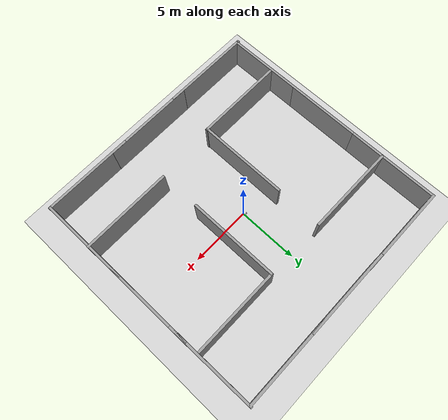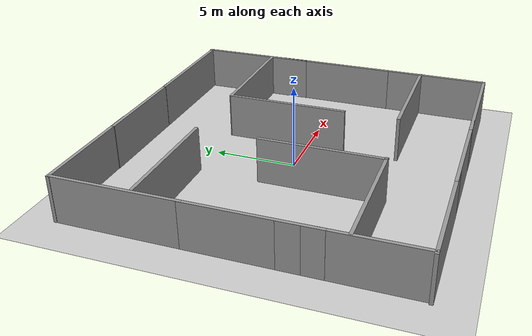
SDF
<sdf version="1.6">
 <world name="default">
  <light name="sun" type="directional">
   <pose>0 0 10 0 -0 0</pose>
   <diffuse>0.8 0.8 0.8 1</diffuse>
   <specular>0.2 0.2 0.2 1</specular>
   <attenuation>
    <range>1000</range>
    <constant>0.9</constant>
    <linear>0.01</linear>
    <quadratic>0.001</quadratic>
   </attenuation>
   <direction>-0.5 0.1 -0.9</direction>
  </light>
  <model name="ground_plane">
   <static>1</static>
   <link name="link">
    <collision name="collision">
     <geometry><plane><normal>0 0 1</normal><size>100 100</size></plane></geometry>
     <surface>
      <contact><collide_bitmask>65535</collide_bitmask></contact>
      <friction><ode><mu>100</mu><mu2>50</mu2></ode></friction>
     </surface>
    </collision>
    <visual name="visual">
     <cast_shadows>0</cast_shadows>
     <geometry><plane><normal>0 0 1</normal><size>100 100</size></plane></geometry>
     <material>
      <script><uri>file://media/materials/scripts/gazebo.material</uri><name>Gazebo/Grey</name></script>
     </material>
    </visual>
   </link>
  </model>
  <gravity>0 0 -9.8</gravity>
  <magnetic_field>6e-06 2.3e-05 -4.2e-05</magnetic_field>
  <atmosphere type="adiabatic"/>
  <physics name="default_physics" default="0" type="ode">
   <max_step_size>0.001</max_step_size>
   <real_time_factor>1</real_time_factor>
   <real_time_update_rate>1000</real_time_update_rate>
  </physics>
  <scene><ambient>0.4 0.4 0.4 1</ambient><background>0.7 0.7 0.7 1</background><shadows>1</shadows></scene>
  <spherical_coordinates>
   <surface_model>EARTH_WGS84</surface_model>
   <latitude_deg>0</latitude_deg>
   <longitude_deg>0</longitude_deg>
   <elevation>0</elevation>
   <heading_deg>0</heading_deg>
  </spherical_coordinates>
  <model name="grey_wall">
   <static>1</static>
   <link name="link">
    <pose>0 0 1.4 0 -0 0</pose>
    <collision name="collision"><geometry><box><size>7.5 0.2 2.8</size></box></geometry></collision>
    <visual name="visual">
     <cast_shadows>0</cast_shadows>
     <geometry><box><size>7.5 0.2 2.8</size></box></geometry>
     <material>
      <script>
       <uri>model://grey_wall/materials/scripts</uri>
       <uri>model://grey_wall/materials/textures</uri>
       <name>vrc/grey_wall</name>
      </script>
     </material>
    </visual>
   </link>
   <pose>6.27087 -9.84764 0 0 -0 0</pose>
  </model>
  <model name="grey_wall_clone">
   <static>1</static>
   <link name="link">
    <pose>0 0 1.4 0 -0 0</pose>
    <collision name="collision"><geometry><box><size>7.5 0.2 2.8</size></box></geometry></collision>
    <visual name="visual">
     <cast_shadows>0</cast_shadows>
     <geometry><box><size>7.5 0.2 2.8</size></box></geometry>
     <material>
      <script>
       <uri>model://grey_wall/materials/scripts</uri>
       <uri>model://grey_wall/materials/textures</uri>
       <name>vrc/grey_wall</name>
      </script>
     </material>
    </visual>
   </link>
   <pose>0.147568 -9.84131 0 0 -0 0</pose>
  </model>
  <model name="grey_wall_clone_0">
   <static>1</static>
   <link name="link">
    <pose>0 0 1.4 0 -0 0</pose>
    <collision name="collision"><geometry><box><size>7.5 0.2 2.8</size></box></geometry></collision>
    <visual name="visual">
     <cast_shadows>0</cast_shadows>
     <geometry><box><size>7.5 0.2 2.8</size></box></geometry>
     <material>
      <script>
       <uri>model://grey_wall/materials/scripts</uri>
       <uri>model://grey_wall/materials/textures</uri>
       <name>vrc/grey_wall</name>
      </script>
     </material>
    </visual>
   </link>
   <pose>-6.23276 -9.85236 0 0 -0 0</pose>
  </model>
  <model name="grey_wall_clone_1">
   <static>1</static>
   <link name="link">
    <pose>0 0 1.4 0 -0 0</pose>
    <collision name="collision"><geometry><box><size>7.5 0.2 2.8</size></box></geometry></collision>
    <visual name="visual">
     <cast_shadows>0</cast_shadows>
     <geometry><box><size>7.5 0.2 2.8</size></box></geometry>
     <material>
      <script>
       <uri>model://grey_wall/materials/scripts</uri>
       <uri>model://grey_wall/materials/textures</uri>
       <name>vrc/grey_wall</name>
      </script>
     </material>
    </visual>
   </link>
   <pose>9.9114 -6.17816 0 0 -0 1.56746</pose>
  </model>
  <model name="grey_wall_clone_2">
   <static>1</static>
   <link name="link">
    <pose>0 0 1.4 0 -0 0</pose>
    <collision name="collision"><geometry><box><size>7.5 0.2 2.8</size></box></geometry></collision>
    <visual name="visual">
     <cast_shadows>0</cast_shadows>
     <geometry><box><size>7.5 0.2 2.8</size></box></geometry>
     <material>
      <script>
       <uri>model://grey_wall/materials/scripts</uri>
       <uri>model://grey_wall/materials/textures</uri>
       <name>vrc/grey_wall</name>
      </script>
     </material>
    </visual>
   </link>
   <pose>9.91759 0.301688 0 0 0 -1.57177</pose>
  </model>
  <model name="grey_wall_clone_3">
   <static>1</static>
   <link name="link">
    <pose>0 0 1.4 0 -0 0</pose>
    <collision name="collision"><geometry><box><size>7.5 0.2 2.8</size></box></geometry></collision>
    <visual name="visual">
     <cast_shadows>0</cast_shadows>
     <geometry><box><size>7.5 0.2 2.8</size></box></geometry>
     <material>
      <script>
       <uri>model://grey_wall/materials/scripts</uri>
       <uri>model://grey_wall/materials/textures</uri>
       <name>vrc/grey_wall</name>
      </script>
     </material>
    </visual>
   </link>
   <pose>9.88468 6.21753 0 0 0 -1.56393</pose>
  </model>
  <model name="grey_wall_clone_4">
   <static>1</static>
   <link name="link">
    <pose>0 0 1.4 0 -0 0</pose>
    <collision name="collision"><geometry><box><size>7.5 0.2 2.8</size></box></geometry></collision>
    <visual name="visual">
     <cast_shadows>0</cast_shadows>
     <geometry><box><size>7.5 0.2 2.8</size></box></geometry>
     <material>
      <script>
       <uri>model://grey_wall/materials/scripts</uri>
       <uri>model://grey_wall/materials/textures</uri>
       <name>vrc/grey_wall</name>
      </script>
     </material>
    </visual>
   </link>
   <pose>6.18637 9.80606 0 0 -0 0</pose>
  </model>
  <model name="grey_wall_clone_5">
   <static>1</static>
   <link name="link">
    <pose>0 0 1.4 0 -0 0</pose>
    <collision name="collision"><geometry><box><size>7.5 0.2 2.8</size></box></geometry></collision>
    <visual name="visual">
     <cast_shadows>0</cast_shadows>
     <geometry><box><size>7.5 0.2 2.8</size></box></geometry>
     <material>
      <script>
       <uri>model://grey_wall/materials/scripts</uri>
       <uri>model://grey_wall/materials/textures</uri>
       <name>vrc/grey_wall</name>
      </script>
     </material>
    </visual>
   </link>
   <pose>1e-06 9.81159 0 0 -0 0</pose>
  </model>
  <model name="grey_wall_clone_6">
   <static>1</static>
   <link name="link">
    <pose>0 0 1.4 0 -0 0</pose>
    <collision name="collision"><geometry><box><size>7.5 0.2 2.8</size></box></geometry></collision>
    <visual name="visual">
     <cast_shadows>0</cast_shadows>
     <geometry><box><size>7.5 0.2 2.8</size></box></geometry>
     <material>
      <script>
       <uri>model://grey_wall/materials/scripts</uri>
       <uri>model://grey_wall/materials/textures</uri>
       <name>vrc/grey_wall</name>
      </script>
     </material>
    </visual>
   </link>
   <pose>-6.12056 9.83896 0 0 -0 0</pose>
  </model>
  <model name="grey_wall_clone_7">
   <static>1</static>
   <link name="link">
    <pose>0 0 1.4 0 -0 0</pose>
    <collision name="collision"><geometry><box><size>7.5 0.2 2.8</size></box></geometry></collision>
    <visual name="visual">
     <cast_shadows>0</cast_shadows>
     <geometry><box><size>7.5 0.2 2.8</size></box></geometry>
     <material>
      <script>
       <uri>model://grey_wall/materials/scripts</uri>
       <uri>model://grey_wall/materials/textures</uri>
       <name>vrc/grey_wall</name>
      </script>
     </material>
    </visual>
   </link>
   <pose>-9.75859 6.08766 0 0 0 -1.57203</pose>
  </model>
  <model name="grey_wall_clone_8">
   <static>1</static>
   <link name="link">
    <pose>0 0 1.4 0 -0 0</pose>
    <collision name="collision"><geometry><box><size>7.5 0.2 2.8</size></box></geometry></collision>
    <visual name="visual">
     <cast_shadows>0</cast_shadows>
     <geometry><box><size>7.5 0.2 2.8</size></box></geometry>
     <material>
      <script>
       <uri>model://grey_wall/materials/scripts</uri>
       <uri>model://grey_wall/materials/textures</uri>
       <name>vrc/grey_wall</name>
      </script>
     </material>
    </visual>
   </link>
   <pose>-9.77309 -1.14151 0 0 0 -1.57213</pose>
  </model>
  <model name="grey_wall_clone_9">
   <static>1</static>
   <link name="link">
    <pose>0 0 1.4 0 -0 0</pose>
    <collision name="collision"><geometry><box><size>7.5 0.2 2.8</size></box></geometry></collision>
    <visual name="visual">
     <cast_shadows>0</cast_shadows>
     <geometry><box><size>7.5 0.2 2.8</size></box></geometry>
     <material>
      <script>
       <uri>model://grey_wall/materials/scripts</uri>
       <uri>model://grey_wall/materials/textures</uri>
       <name>vrc/grey_wall</name>
      </script>
     </material>
    </visual>
   </link>
   <pose>-9.77316 -6.18199 0 0 0 -1.56945</pose>
  </model>
  <model name="grey_wall_clone_10">
   <static>1</static>
   <link name="link">
    <pose>0 0 1.4 0 -0 0</pose>
    <collision name="collision"><geometry><box><size>7.5 0.2 2.8</size></box></geometry></collision>
    <visual name="visual">
     <cast_shadows>0</cast_shadows>
     <geometry><box><size>7.5 0.2 2.8</size></box></geometry>
     <material>
      <script>
       <uri>model://grey_wall/materials/scripts</uri>
       <uri>model://grey_wall/materials/textures</uri>
       <name>vrc/grey_wall</name>
      </script>
     </material>
    </visual>
   </link>
   <pose>6.23653 5.08993 0 0 -0 0</pose>
  </model>
  <model name="grey_wall_clone_11">
   <static>1</static>
   <link name="link">
    <pose>0 0 1.4 0 -0 0</pose>
    <collision name="collision"><geometry><box><size>7.5 0.2 2.8</size></box></geometry></collision>
    <visual name="visual">
     <cast_shadows>0</cast_shadows>
     <geometry><box><size>7.5 0.2 2.8</size></box></geometry>
     <material>
      <script>
       <uri>model://grey_wall/materials/scripts</uri>
       <uri>model://grey_wall/materials/textures</uri>
       <name>vrc/grey_wall</name>
      </script>
     </material>
    </visual>
   </link>
   <pose>-6.07163 5.14403 0 0 -0 0</pose>
  </model>
  <model name="grey_wall_clone_12">
   <static>1</static>
   <link name="link">
    <pose>0 0 1.4 0 -0 0</pose>
    <collision name="collision"><geometry><box><size>7.5 0.2 2.8</size></box></geometry></collision>
    <visual name="visual">
     <cast_shadows>0</cast_shadows>
     <geometry><box><size>7.5 0.2 2.8</size></box></geometry>
     <material>
      <script>
       <uri>model://grey_wall/materials/scripts</uri>
       <uri>model://grey_wall/materials/textures</uri>
       <name>vrc/grey_wall</name>
      </script>
     </material>
    </visual>
   </link>
   <pose>-6.04457 -6.02795 0 0 -0 0</pose>
  </model>
  <model name="grey_wall_clone_13">
   <static>1</static>
   <link name="link">
    <pose>0 0 1.4 0 -0 0</pose>
    <collision name="collision"><geometry><box><size>7.5 0.2 2.8</size></box></geometry></collision>
    <visual name="visual">
     <cast_shadows>0</cast_shadows>
     <geometry><box><size>7.5 0.2 2.8</size></box></geometry>
     <material>
      <script>
       <uri>model://grey_wall/materials/scripts</uri>
       <uri>model://grey_wall/materials/textures</uri>
       <name>vrc/grey_wall</name>
      </script>
     </material>
    </visual>
   </link>
   <pose>6.29061 -5.64924 0 0 -0 0</pose>
  </model>
  <model name="grey_wall_clone_14">
   <static>1</static>
   <link name="link">
    <pose>0 0 1.4 0 -0 0</pose>
    <collision name="collision"><geometry><box><size>7.5 0.2 2.8</size></box></geometry></collision>
    <visual name="visual">
     <cast_shadows>0</cast_shadows>
     <geometry><box><size>7.5 0.2 2.8</size></box></geometry>
     <material>
      <script>
       <uri>model://grey_wall/materials/scripts</uri>
       <uri>model://grey_wall/materials/textures</uri>
       <name>vrc/grey_wall</name>
      </script>
     </material>
    </visual>
   </link>
   <pose>2.58464 1.38396 0 0 -0 1.57088</pose>
  </model>
  <model name="grey_wall_clone_15">
   <static>1</static>
   <link name="link">
    <pose>0 0 1.4 0 -0 0</pose>
    <collision name="collision"><geometry><box><size>7.5 0.2 2.8</size></box></geometry></collision>
    <visual name="visual">
     <cast_shadows>0</cast_shadows>
     <geometry><box><size>7.5 0.2 2.8</size></box></geometry>
     <material>
      <script>
       <uri>model://grey_wall/materials/scripts</uri>
       <uri>model://grey_wall/materials/textures</uri>
       <name>vrc/grey_wall</name>
      </script>
     </material>
    </visual>
   </link>
   <pose>-2.42922 -2.37581 0 0 0 -1.57424</pose>
  </model>
  <model name="sbot">
   <link name="base_link">
    <inertial>
     <pose>-0.148871 0.014322 0.103883 0 -0 0</pose>
     <mass>1.93995</mass>
     <inertia>
      <ixx>0.00485267</ixx>
      <ixy>2.84784e-05</ixy>
      <ixz>9.01229e-05</ixz>
      <iyy>0.00385331</iyy>
      <iyz>0.00021888</iyz>
      <izz>0.00277717</izz>
     </inertia>
    </inertial>
    <collision name="base_link_collision">
     <geometry>
      <mesh>
       <scale>0.001 0.001 0.001</scale>
       <uri>/home/shubham/catkin_ws/src/sbot/sbot_description/meshes/base_link.stl</uri>
      </mesh>
     </geometry>
     <surface><friction><ode><mu>1</mu><mu2>1</mu2></ode></friction></surface>
    </collision>
    <collision name="base_link_fixed_joint_lump__caster_back_1_collision_1">
     <geometry>
      <mesh>
       <scale>0.001 0.001 0.001</scale>
       <uri>/home/shubham/catkin_ws/src/sbot/sbot_description/meshes/caster_back_1.stl</uri>
      </mesh>
     </geometry>
     <surface><friction><ode><mu>0.01</mu><mu2>0.01</mu2></ode></friction></surface>
    </collision>
    <collision name="base_link_fixed_joint_lump__caster_front_1_collision_2">
     <geometry>
      <mesh>
       <scale>0.001 0.001 0.001</scale>
       <uri>/home/shubham/catkin_ws/src/sbot/sbot_description/meshes/caster_front_1.stl</uri>
      </mesh>
     </geometry>
     <surface><friction><ode><mu>0.01</mu><mu2>0.01</mu2></ode></friction></surface>
    </collision>
    <collision name="base_link_fixed_joint_lump__imu_1_collision_3">
     <geometry>
      <mesh>
       <scale>0.001 0.001 0.001</scale>
       <uri>/home/shubham/catkin_ws/src/sbot/sbot_description/meshes/imu_1.stl</uri>
      </mesh>
     </geometry>
     <surface><friction><ode><mu>1</mu><mu2>1</mu2></ode></friction></surface>
    </collision>
    <collision name="base_link_fixed_joint_lump__realsense_camera_1_collision_4">
     <geometry>
      <mesh>
       <scale>0.001 0.001 0.001</scale>
       <uri>/home/shubham/catkin_ws/src/sbot/sbot_description/meshes/realsense_camera_1.stl</uri>
      </mesh>
     </geometry>
     <surface><friction><ode><mu>1</mu><mu2>1</mu2></ode></friction></surface>
    </collision>
    <collision name="base_link_fixed_joint_lump__motor_left_1_collision_5">
     <geometry>
      <mesh>
       <scale>0.001 0.001 0.001</scale>
       <uri>/home/shubham/catkin_ws/src/sbot/sbot_description/meshes/motor_left_1.stl</uri>
      </mesh>
     </geometry>
     <surface><friction><ode><mu>1</mu><mu2>1</mu2></ode></friction></surface>
    </collision>
    <collision name="base_link_fixed_joint_lump__lidar_1_collision_6">
     <geometry>
      <mesh>
       <scale>0.001 0.001 0.001</scale>
       <uri>/home/shubham/catkin_ws/src/sbot/sbot_description/meshes/lidar_1.stl</uri>
      </mesh>
     </geometry>
     <surface><friction><ode><mu>1</mu><mu2>1</mu2></ode></friction></surface>
    </collision>
    <collision name="base_link_fixed_joint_lump__motor_driver_1_collision_7">
     <geometry>
      <mesh>
       <scale>0.001 0.001 0.001</scale>
       <uri>/home/shubham/catkin_ws/src/sbot/sbot_description/meshes/motor_driver_1.stl</uri>
      </mesh>
     </geometry>
     <surface><friction><ode><mu>1</mu><mu2>1</mu2></ode></friction></surface>
    </collision>
    <collision name="base_link_fixed_joint_lump__raspberry_pi_1_collision_8">
     <geometry>
      <mesh>
       <scale>0.001 0.001 0.001</scale>
       <uri>/home/shubham/catkin_ws/src/sbot/sbot_description/meshes/raspberry_pi_1.stl</uri>
      </mesh>
     </geometry>
     <surface><friction><ode><mu>1</mu><mu2>1</mu2></ode></friction></surface>
    </collision>
    <collision name="base_link_fixed_joint_lump__motor_right_1_collision_9">
     <geometry>
      <mesh>
       <scale>0.001 0.001 0.001</scale>
       <uri>/home/shubham/catkin_ws/src/sbot/sbot_description/meshes/motor_right_1.stl</uri>
      </mesh>
     </geometry>
     <surface><friction><ode><mu>1</mu><mu2>1</mu2></ode></friction></surface>
    </collision>
    <visual name="base_link_visual">
     <geometry>
      <mesh>
       <scale>0.001 0.001 0.001</scale>
       <uri>/home/shubham/catkin_ws/src/sbot/sbot_description/meshes/base_link.stl</uri>
      </mesh>
     </geometry>
     <material>
      <script><name>Gazebo/White</name><uri>file://media/materials/scripts/gazebo.material</uri></script>
     </material>
    </visual>
    <visual name="base_link_fixed_joint_lump__caster_back_1_visual_1">
     <geometry>
      <mesh>
       <scale>0.001 0.001 0.001</scale>
       <uri>/home/shubham/catkin_ws/src/sbot/sbot_description/meshes/caster_back_1.stl</uri>
      </mesh>
     </geometry>
     <material>
      <script><name>Gazebo/Black</name><uri>file://media/materials/scripts/gazebo.material</uri></script>
     </material>
    </visual>
    <visual name="base_link_fixed_joint_lump__caster_front_1_visual_2">
     <geometry>
      <mesh>
       <scale>0.001 0.001 0.001</scale>
       <uri>/home/shubham/catkin_ws/src/sbot/sbot_description/meshes/caster_front_1.stl</uri>
      </mesh>
     </geometry>
     <material>
      <script><name>Gazebo/Black</name><uri>file://media/materials/scripts/gazebo.material</uri></script>
     </material>
    </visual>
    <visual name="base_link_fixed_joint_lump__imu_1_visual_3">
     <geometry>
      <mesh>
       <scale>0.001 0.001 0.001</scale>
       <uri>/home/shubham/catkin_ws/src/sbot/sbot_description/meshes/imu_1.stl</uri>
      </mesh>
     </geometry>
     <material>
      <script><name>Gazebo/White</name><uri>file://media/materials/scripts/gazebo.material</uri></script>
     </material>
    </visual>
    <visual name="base_link_fixed_joint_lump__realsense_camera_1_visual_4">
     <geometry>
      <mesh>
       <scale>0.001 0.001 0.001</scale>
       <uri>/home/shubham/catkin_ws/src/sbot/sbot_description/meshes/realsense_camera_1.stl</uri>
      </mesh>
     </geometry>
     <material>
      <script><name>Gazebo/Grey</name><uri>file://media/materials/scripts/gazebo.material</uri></script>
     </material>
    </visual>
    <visual name="base_link_fixed_joint_lump__motor_left_1_visual_5">
     <geometry>
      <mesh>
       <scale>0.001 0.001 0.001</scale>
       <uri>/home/shubham/catkin_ws/src/sbot/sbot_description/meshes/motor_left_1.stl</uri>
      </mesh>
     </geometry>
     <material>
      <script><name>Gazebo/White</name><uri>file://media/materials/scripts/gazebo.material</uri></script>
     </material>
    </visual>
    <visual name="base_link_fixed_joint_lump__lidar_1_visual_6">
     <geometry>
      <mesh>
       <scale>0.001 0.001 0.001</scale>
       <uri>/home/shubham/catkin_ws/src/sbot/sbot_description/meshes/lidar_1.stl</uri>
      </mesh>
     </geometry>
     <material>
      <script><name>Gazebo/Blue</name><uri>file://media/materials/scripts/gazebo.material</uri></script>
     </material>
    </visual>
    <visual name="base_link_fixed_joint_lump__motor_driver_1_visual_7">
     <geometry>
      <mesh>
       <scale>0.001 0.001 0.001</scale>
       <uri>/home/shubham/catkin_ws/src/sbot/sbot_description/meshes/motor_driver_1.stl</uri>
      </mesh>
     </geometry>
     <material>
      <script><name>Gazebo/Red</name><uri>file://media/materials/scripts/gazebo.material</uri></script>
     </material>
    </visual>
    <visual name="base_link_fixed_joint_lump__raspberry_pi_1_visual_8">
     <geometry>
      <mesh>
       <scale>0.001 0.001 0.001</scale>
       <uri>/home/shubham/catkin_ws/src/sbot/sbot_description/meshes/raspberry_pi_1.stl</uri>
      </mesh>
     </geometry>
     <material>
      <script><name>Gazebo/Green</name><uri>file://media/materials/scripts/gazebo.material</uri></script>
     </material>
    </visual>
    <visual name="base_link_fixed_joint_lump__motor_right_1_visual_9">
     <geometry>
      <mesh>
       <scale>0.001 0.001 0.001</scale>
       <uri>/home/shubham/catkin_ws/src/sbot/sbot_description/meshes/motor_right_1.stl</uri>
      </mesh>
     </geometry>
     <material>
      <script><name>Gazebo/White</name><uri>file://media/materials/scripts/gazebo.material</uri></script>
     </material>
    </visual>
    <sensor name="imu_sensor" type="imu">
     <always_on>1</always_on>
     <update_rate>100</update_rate>
     <visualize>1</visualize>
     <topic>__default_topic__</topic>
     <plugin name="imu_plugin" filename="libgazebo_ros_imu_sensor.so">
      <topicName>imu</topicName>
      <bodyName>imu_link</bodyName>
      <updateRateHZ>10.0</updateRateHZ>
      <gaussianNoise>0.0</gaussianNoise>
      <xyzOffset>0 0 0</xyzOffset>
      <rpyOffset>0 0 0</rpyOffset>
      <frameName>imu_link</frameName>
      <initialOrientationAsReference>0</initialOrientationAsReference>
      <robotNamespace>/</robotNamespace>
     </plugin>
     <pose>-0.15 0 0.09 0 -0 0</pose>
    </sensor>
    <sensor name="camera1" type="depth">
     <update_rate>15</update_rate>
     <camera name="head">
      <image><width>320</width><height>240</height><format>R8G8B8</format></image>
      <clip><near>0.02</near><far>300</far></clip>
      <noise><type>gaussian</type><mean>0</mean><stddev>0.03</stddev></noise>
      <horizontal_fov>1.047</horizontal_fov>
     </camera>
     <plugin name="camera1_controller" filename="libgazebo_ros_openni_kinect.so">
      <alwaysOn>1</alwaysOn>
      <updateRate>0.0</updateRate>
      <cameraName>camera_ir</cameraName>
      <imageTopicName>/camera/depth/image_raw</imageTopicName>
      <cameraInfoTopicName>/camera/depth/camera_info</cameraInfoTopicName>
      <depthImageTopicName>/camera/depth/depth_raw</depthImageTopicName>
      <depthImageInfoTopicName>/camera/depth/camera_info</depthImageInfoTopicName>
      <pointCloudTopicName>/camera/depth_registered/points</pointCloudTopicName>
      <frameName>realsense_depth_optical_frame</frameName>
      <pointCloudCutoff>0.12</pointCloudCutoff>
      <pointCloudCutoffMax>3.0</pointCloudCutoffMax>
      <distortionK1>0.00000001</distortionK1>
      <distortionK2>0.00000001</distortionK2>
      <distortionK3>0.00000001</distortionK3>
      <distortionT1>0.00000001</distortionT1>
      <distortionT2>0.00000001</distortionT2>
      <CxPrime>0</CxPrime>
      <Cx>0</Cx>
      <Cy>0</Cy>
      <focalLength>0</focalLength>
      <hackBaseline>0</hackBaseline>
      <robotNamespace>/</robotNamespace>
     </plugin>
     <pose>-0.15 0.0175 0.087 0 -0 0</pose>
    </sensor>
    <sensor name="lidar" type="ray">
     <visualize>0</visualize>
     <update_rate>10</update_rate>
     <ray>
      <scan>
       <horizontal>
        <samples>720</samples>
        <resolution>1</resolution>
        <min_angle>-1.8326</min_angle>
        <max_angle>1.8326</max_angle>
       </horizontal>
       <vertical><samples>1</samples><min_angle>0</min_angle><max_angle>0</max_angle></vertical>
      </scan>
      <range><min>0.05</min><max>20</max><resolution>0.01</resolution></range>
      <noise><type>gaussian</type><mean>0</mean><stddev>0.01</stddev></noise>
     </ray>
     <plugin name="gazebo_ros_head_hokuyo_controller" filename="libgazebo_ros_laser.so">
      <topicName>/sbot/laserscan</topicName>
      <frameName>lidar_1</frameName>
      <robotNamespace>/</robotNamespace>
     </plugin>
     <pose>-0.15 0 0.095 0 -0 0</pose>
    </sensor>
    <self_collide>1</self_collide>
   </link>
   <link name="wheel_left_1">
    <pose>-0.1933 0 0.0198 0 -0 0</pose>
    <inertial>
     <pose>-0.00146 -0 0.000234 0 -0 0</pose>
     <mass>0.0200216</mass>
     <inertia><ixx>5e-06</ixx><ixy>-0</ixy><ixz>-0</ixz><iyy>3e-06</iyy><iyz>0</iyz><izz>3e-06</izz></inertia>
    </inertial>
    <collision name="wheel_left_1_collision">
     <pose>0.1933 0 -0.0198 0 -0 0</pose>
     <geometry>
      <mesh>
       <scale>0.001 0.001 0.001</scale>
       <uri>/home/shubham/catkin_ws/src/sbot/sbot_description/meshes/wheel_left_1.stl</uri>
      </mesh>
     </geometry>
     <surface><friction><ode><mu>600</mu><mu2>600</mu2></ode></friction></surface>
    </collision>
    <visual name="wheel_left_1_visual">
     <pose>0.1933 0 -0.0198 0 -0 0</pose>
     <geometry>
      <mesh>
       <scale>0.001 0.001 0.001</scale>
       <uri>/home/shubham/catkin_ws/src/sbot/sbot_description/meshes/wheel_left_1.stl</uri>
      </mesh>
     </geometry>
     <material>
      <script><name>Gazebo/Black</name><uri>file://media/materials/scripts/gazebo.material</uri></script>
     </material>
    </visual>
    <self_collide>1</self_collide>
   </link>
   <joint name="left_wheel_joint" type="revolute">
    <child>wheel_left_1</child>
    <parent>base_link</parent>
    <axis>
     <xyz>0.01 0 0</xyz>
     <limit><lower>-1e+16</lower><upper>1e+16</upper></limit>
     <dynamics><spring_reference>0</spring_reference><spring_stiffness>0</spring_stiffness></dynamics>
     <use_parent_model_frame>1</use_parent_model_frame>
    </axis>
   </joint>
   <link name="wheel_right_1">
    <pose>-0.0917 0 0.0198 0 -0 0</pose>
    <inertial>
     <pose>-0.00754 0 0.000244 0 -0 0</pose>
     <mass>0.0200216</mass>
     <inertia><ixx>5e-06</ixx><ixy>-0</ixy><ixz>0</ixz><iyy>3e-06</iyy><iyz>-0</iyz><izz>3e-06</izz></inertia>
    </inertial>
    <collision name="wheel_right_1_collision">
     <pose>0.0917 0 -0.0198 0 -0 0</pose>
     <geometry>
      <mesh>
       <scale>0.001 0.001 0.001</scale>
       <uri>/home/shubham/catkin_ws/src/sbot/sbot_description/meshes/wheel_right_1.stl</uri>
      </mesh>
     </geometry>
     <surface><friction><ode><mu>600</mu><mu2>600</mu2></ode></friction></surface>
    </collision>
    <visual name="wheel_right_1_visual">
     <pose>0.0917 0 -0.0198 0 -0 0</pose>
     <geometry>
      <mesh>
       <scale>0.001 0.001 0.001</scale>
       <uri>/home/shubham/catkin_ws/src/sbot/sbot_description/meshes/wheel_right_1.stl</uri>
      </mesh>
     </geometry>
     <material>
      <script><name>Gazebo/Black</name><uri>file://media/materials/scripts/gazebo.material</uri></script>
     </material>
    </visual>
    <self_collide>1</self_collide>
   </link>
   <joint name="right_wheel_joint" type="revolute">
    <child>wheel_right_1</child>
    <parent>base_link</parent>
    <axis>
     <xyz>0.01 0 0</xyz>
     <limit><lower>-1e+16</lower><upper>1e+16</upper></limit>
     <dynamics><spring_reference>0</spring_reference><spring_stiffness>0</spring_stiffness></dynamics>
     <use_parent_model_frame>1</use_parent_model_frame>
    </axis>
   </joint>
   <plugin name="control" filename="libgazebo_ros_control.so"><robotNamespace>/</robotNamespace></plugin>
   <static>0</static>
   <plugin name="differential_drive_controller" filename="libgazebo_ros_diff_drive.so">
    <updateRate>10</updateRate>
    <leftJoint>left_wheel_joint</leftJoint>
    <rightJoint>right_wheel_joint</rightJoint>
    <wheelAcceleration>1.0</wheelAcceleration>
    <wheelTorque>20</wheelTorque>
    <commandTopic>cmd_vel</commandTopic>
    <odometryTopic>odom</odometryTopic>
    <odometryFrame>odom</odometryFrame>
    <robotBaseFrame>base_footprint</robotBaseFrame>
    <odometrySource>1</odometrySource>
    <publishWheelTF>1</publishWheelTF>
    <publishOdom>1</publishOdom>
    <publishWheelJointState>1</publishWheelJointState>
    <legacyMode>0</legacyMode>
    <robotNamespace>/</robotNamespace>
   </plugin>
   <pose>-0.112609 0.10745 -0.021178 -2.25169 0.90795 0.242904</pose>
  </model>
 </world>
</sdf>
